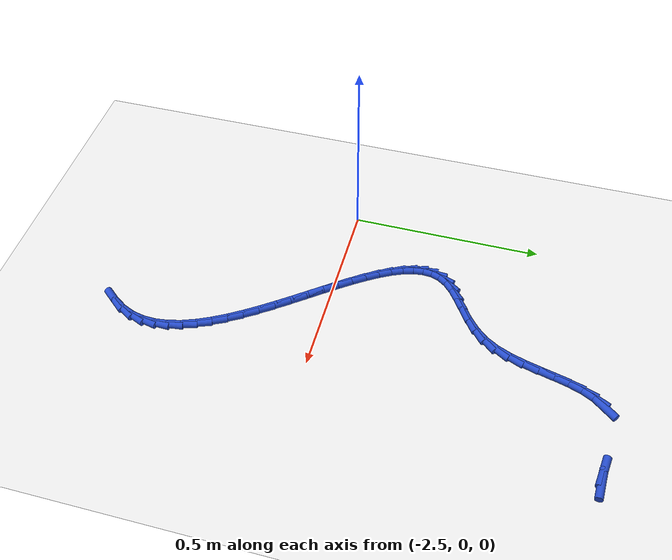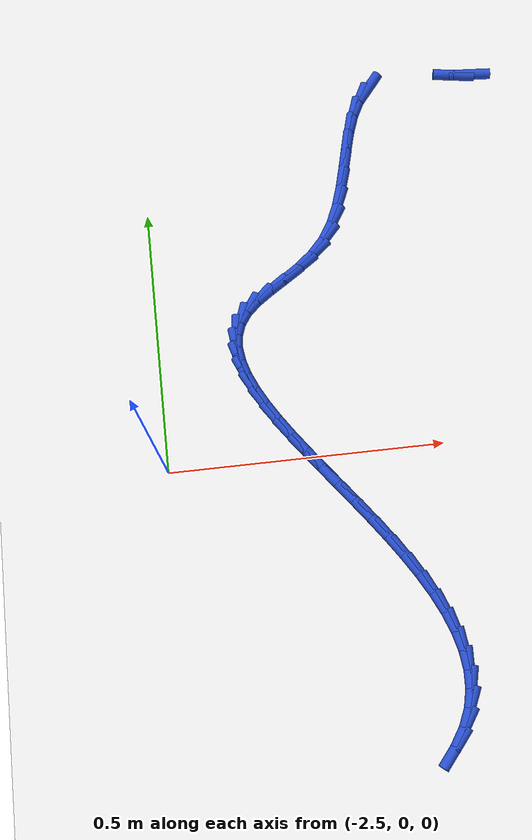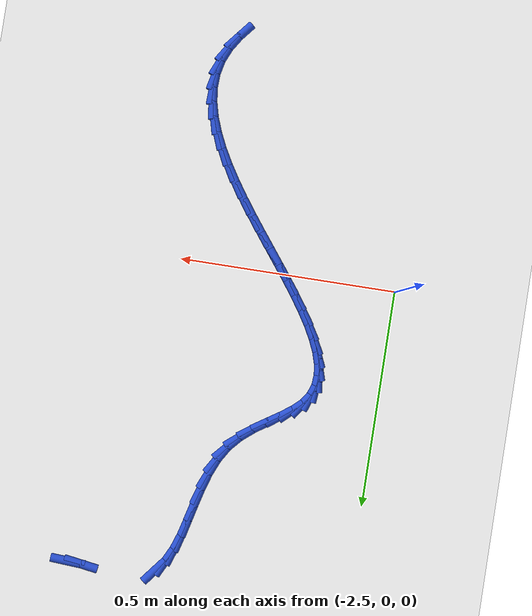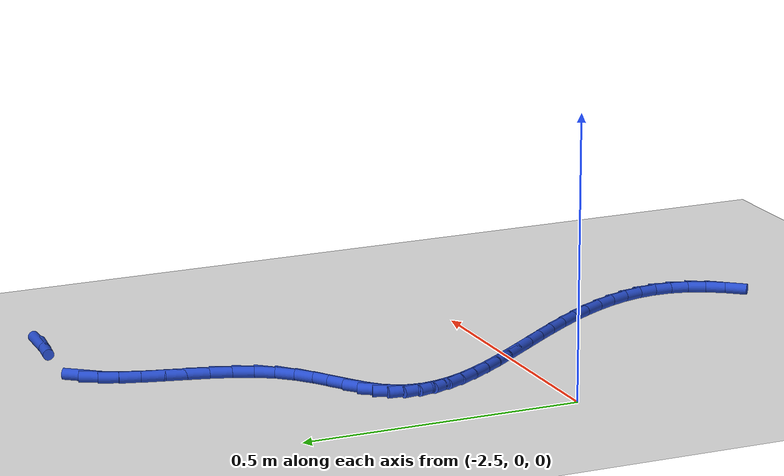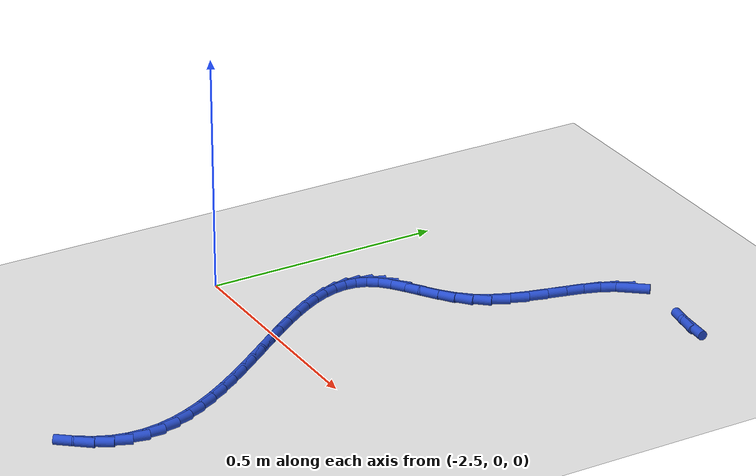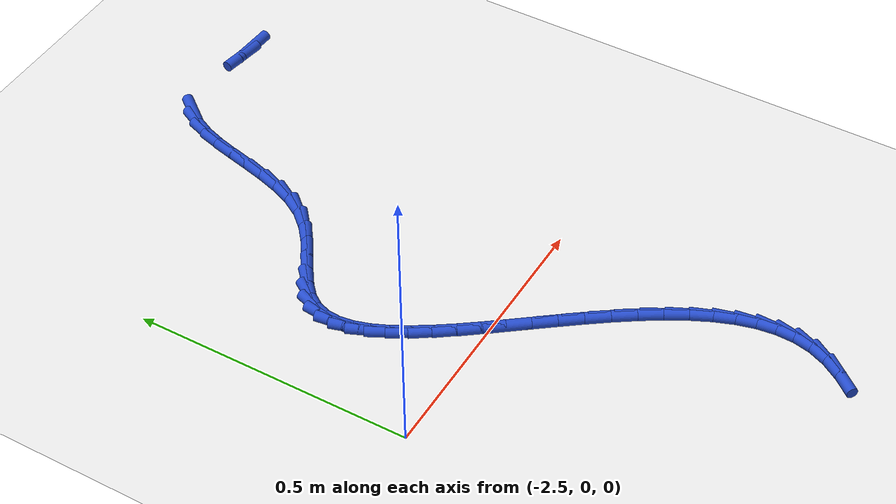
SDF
<sdf version="1.6">
 <world name="default">
  <model name="ground_plane">
   <static>1</static>
   <link name="link">
    <collision name="collision">
     <geometry><plane><normal>0 0 1</normal><size>100 100</size></plane></geometry>
     <surface><friction><ode><mu>100</mu><mu2>50</mu2></ode></friction></surface>
    </collision>
    <visual name="visual">
     <cast_shadows>0</cast_shadows>
     <geometry><plane><normal>0 0 1</normal><size>100 100</size></plane></geometry>
     <material>
      <script><uri>file://media/materials/scripts/gazebo.material</uri><name>Gazebo/WhiteGlow</name></script>
     </material>
    </visual>
   </link>
  </model>
  <model name="line">
   <link name="link_107">
    <pose>-1.851422405345341 0.727134787232987 0.01 0 1.57 -0.06237467459850615</pose>
    <collision name="collision">
     <geometry><cylinder><radius>0.01</radius><length>0.08</length></cylinder></geometry>
    </collision>
    <visual name="visual">
     <material>
      <script><name>Gazebo/Blue</name><uri>file://media/materials/scripts/gazebo.material</uri></script>
     </material>
     <geometry><cylinder><radius>0.01</radius><length>0.08</length></cylinder></geometry>
    </visual>
   </link>
   <link name="link_108">
    <pose>-1.8821171817120144 0.7290518507416011 0.01 0 1.57 -0.1492251677613597</pose>
    <collision name="collision">
     <geometry><cylinder><radius>0.01</radius><length>0.08</length></cylinder></geometry>
    </collision>
    <visual name="visual">
     <material>
      <script><name>Gazebo/Blue</name><uri>file://media/materials/scripts/gazebo.material</uri></script>
     </material>
     <geometry><cylinder><radius>0.01</radius><length>0.08</length></cylinder></geometry>
    </visual>
   </link>
   <link name="link_113">
    <pose>-2.054889419278315 0.7146491188451355 0.01 0 1.57 0.8979172937635405</pose>
    <collision name="collision">
     <geometry><cylinder><radius>0.01</radius><length>0.08</length></cylinder></geometry>
    </collision>
    <visual name="visual">
     <material>
      <script><name>Gazebo/Blue</name><uri>file://media/materials/scripts/gazebo.material</uri></script>
     </material>
     <geometry><cylinder><radius>0.01</radius><length>0.08</length></cylinder></geometry>
    </visual>
   </link>
   <link name="link_114">
    <pose>-2.0736763861262086 0.691075565786263 0.01 0 1.57 1.108438636176878</pose>
    <collision name="collision">
     <geometry><cylinder><radius>0.01</radius><length>0.08</length></cylinder></geometry>
    </collision>
    <visual name="visual">
     <material>
      <script><name>Gazebo/Blue</name><uri>file://media/materials/scripts/gazebo.material</uri></script>
     </material>
     <geometry><cylinder><radius>0.01</radius><length>0.08</length></cylinder></geometry>
    </visual>
   </link>
   <link name="link_115">
    <pose>-2.0881874542079037 0.661959597030697 0.01 0 1.57 1.2396733311084884</pose>
    <collision name="collision">
     <geometry><cylinder><radius>0.01</radius><length>0.08</length></cylinder></geometry>
    </collision>
    <visual name="visual">
     <material>
      <script><name>Gazebo/Blue</name><uri>file://media/materials/scripts/gazebo.material</uri></script>
     </material>
     <geometry><cylinder><radius>0.01</radius><length>0.08</length></cylinder></geometry>
    </visual>
   </link>
   <link name="link_116">
    <pose>-2.099655461289994 0.6286010428904676 0.01 0 1.57 1.3107743665459608</pose>
    <collision name="collision">
     <geometry><cylinder><radius>0.01</radius><length>0.08</length></cylinder></geometry>
    </collision>
    <visual name="visual">
     <material>
      <script><name>Gazebo/Blue</name><uri>file://media/materials/scripts/gazebo.material</uri></script>
     </material>
     <geometry><cylinder><radius>0.01</radius><length>0.08</length></cylinder></geometry>
    </visual>
   </link>
   <link name="link_117">
    <pose>-2.1093132451390697 0.5922997336776034 0.01 0 1.57 1.3359047723183768</pose>
    <collision name="collision">
     <geometry><cylinder><radius>0.01</radius><length>0.08</length></cylinder></geometry>
    </collision>
    <visual name="visual">
     <material>
      <script><name>Gazebo/Blue</name><uri>file://media/materials/scripts/gazebo.material</uri></script>
     </material>
     <geometry><cylinder><radius>0.01</radius><length>0.08</length></cylinder></geometry>
    </visual>
   </link>
   <link name="link_118">
    <pose>-2.1183936435217245 0.5543554997041328 0.01 0 1.57 1.3217898520260687</pose>
    <collision name="collision">
     <geometry><cylinder><radius>0.01</radius><length>0.08</length></cylinder></geometry>
    </collision>
    <visual name="visual">
     <material>
      <script><name>Gazebo/Blue</name><uri>file://media/materials/scripts/gazebo.material</uri></script>
     </material>
     <geometry><cylinder><radius>0.01</radius><length>0.08</length></cylinder></geometry>
    </visual>
   </link>
   <link name="link_119">
    <pose>-2.1281294942045488 0.5160681712820859 0.01 0 1.57 1.2689287001186136</pose>
    <collision name="collision">
     <geometry><cylinder><radius>0.01</radius><length>0.08</length></cylinder></geometry>
    </collision>
    <visual name="visual">
     <material>
      <script><name>Gazebo/Blue</name><uri>file://media/materials/scripts/gazebo.material</uri></script>
     </material>
     <geometry><cylinder><radius>0.01</radius><length>0.08</length></cylinder></geometry>
    </visual>
   </link>
   <link name="link_120">
    <pose>-2.139753634954136 0.47873757872349154 0.01 0 1.57 1.1728247801799896</pose>
    <collision name="collision">
     <geometry><cylinder><radius>0.01</radius><length>0.08</length></cylinder></geometry>
    </collision>
    <visual name="visual">
     <material>
      <script><name>Gazebo/Blue</name><uri>file://media/materials/scripts/gazebo.material</uri></script>
     </material>
     <geometry><cylinder><radius>0.01</radius><length>0.08</length></cylinder></geometry>
    </visual>
   </link>
   <link name="link_121">
    <pose>-2.1544989035370783 0.4436635523403786 0.01 0 1.57 1.0259871695971379</pose>
    <collision name="collision">
     <geometry><cylinder><radius>0.01</radius><length>0.08</length></cylinder></geometry>
    </collision>
    <visual name="visual">
     <material>
      <script><name>Gazebo/Blue</name><uri>file://media/materials/scripts/gazebo.material</uri></script>
     </material>
     <geometry><cylinder><radius>0.01</radius><length>0.08</length></cylinder></geometry>
    </visual>
   </link>
   <link name="link_122">
    <pose>-2.1735981377199662 0.4121459224447758 0.01 0 1.57 0.839370214415792</pose>
    <collision name="collision">
     <geometry><cylinder><radius>0.01</radius><length>0.08</length></cylinder></geometry>
    </collision>
    <visual name="visual">
     <material>
      <script><name>Gazebo/Blue</name><uri>file://media/materials/scripts/gazebo.material</uri></script>
     </material>
     <geometry><cylinder><radius>0.01</radius><length>0.08</length></cylinder></geometry>
    </visual>
   </link>
   <link name="link_123">
    <pose>-2.1978249573672444 0.38515192268157533 0.01 0 1.57 0.6925511351685522</pose>
    <collision name="collision">
     <geometry><cylinder><radius>0.01</radius><length>0.08</length></cylinder></geometry>
    </collision>
    <visual name="visual">
     <material>
      <script><name>Gazebo/Blue</name><uri>file://media/materials/scripts/gazebo.material</uri></script>
     </material>
     <geometry><cylinder><radius>0.01</radius><length>0.08</length></cylinder></geometry>
    </visual>
   </link>
   <link name="link_124">
    <pose>-2.22570567141621 0.3620211321097121 0.01 0 1.57 0.6075878278173372</pose>
    <collision name="collision">
     <geometry><cylinder><radius>0.01</radius><length>0.08</length></cylinder></geometry>
    </collision>
    <visual name="visual">
     <material>
      <script><name>Gazebo/Blue</name><uri>file://media/materials/scripts/gazebo.material</uri></script>
     </material>
     <geometry><cylinder><radius>0.01</radius><length>0.08</length></cylinder></geometry>
    </visual>
   </link>
   <link name="link_125">
    <pose>-2.255080207761514 0.34159600620887187 0.01 0 1.57 0.5816670946358619</pose>
    <collision name="collision">
     <geometry><cylinder><radius>0.01</radius><length>0.08</length></cylinder></geometry>
    </collision>
    <visual name="visual">
     <material>
      <script><name>Gazebo/Blue</name><uri>file://media/materials/scripts/gazebo.material</uri></script>
     </material>
     <geometry><cylinder><radius>0.01</radius><length>0.08</length></cylinder></geometry>
    </visual>
   </link>
   <link name="link_126">
    <pose>-2.2837883238356627 0.32271887699852553 0.01 0 1.57 0.6202507188776875</pose>
    <collision name="collision">
     <geometry><cylinder><radius>0.01</radius><length>0.08</length></cylinder></geometry>
    </collision>
    <visual name="visual">
     <material>
      <script><name>Gazebo/Blue</name><uri>file://media/materials/scripts/gazebo.material</uri></script>
     </material>
     <geometry><cylinder><radius>0.01</radius><length>0.08</length></cylinder></geometry>
    </visual>
   </link>
   <link name="link_127">
    <pose>-2.3096697770711594 0.3042320764981446 0.01 0 1.57 0.7445608548222381</pose>
    <collision name="collision">
     <geometry><cylinder><radius>0.01</radius><length>0.08</length></cylinder></geometry>
    </collision>
    <visual name="visual">
     <material>
      <script><name>Gazebo/Blue</name><uri>file://media/materials/scripts/gazebo.material</uri></script>
     </material>
     <geometry><cylinder><radius>0.01</radius><length>0.08</length></cylinder></geometry>
    </visual>
   </link>
   <link name="link_128">
    <pose>-2.330564372143896 0.2849779588314589 0.01 0 1.57 0.9726010026063336</pose>
    <collision name="collision">
     <geometry><cylinder><radius>0.01</radius><length>0.08</length></cylinder></geometry>
    </collision>
    <visual name="visual">
     <material>
      <script><name>Gazebo/Blue</name><uri>file://media/materials/scripts/gazebo.material</uri></script>
     </material>
     <geometry><cylinder><radius>0.01</radius><length>0.08</length></cylinder></geometry>
    </visual>
   </link>
   <link name="link_129">
    <pose>-2.344831914001391 0.2640421761122486 0.01 0 1.57 1.239364003235438</pose>
    <collision name="collision">
     <geometry><cylinder><radius>0.01</radius><length>0.08</length></cylinder></geometry>
    </collision>
    <visual name="visual">
     <material>
      <script><name>Gazebo/Blue</name><uri>file://media/materials/scripts/gazebo.material</uri></script>
     </material>
     <geometry><cylinder><radius>0.01</radius><length>0.08</length></cylinder></geometry>
    </visual>
   </link>
   <link name="link_130">
    <pose>-2.3526389189138346 0.24135570546158802 0.01 0 1.57 1.4926293784727964</pose>
    <collision name="collision">
     <geometry><cylinder><radius>0.01</radius><length>0.08</length></cylinder></geometry>
    </collision>
    <visual name="visual">
     <material>
      <script><name>Gazebo/Blue</name><uri>file://media/materials/scripts/gazebo.material</uri></script>
     </material>
     <geometry><cylinder><radius>0.01</radius><length>0.08</length></cylinder></geometry>
    </visual>
   </link>
   <link name="link_131">
    <pose>-2.354544032767968 0.21703299380384186 0.01 0 1.57 -1.4385414452161254</pose>
    <collision name="collision">
     <geometry><cylinder><radius>0.01</radius><length>0.08</length></cylinder></geometry>
    </collision>
    <visual name="visual">
     <material>
      <script><name>Gazebo/Blue</name><uri>file://media/materials/scripts/gazebo.material</uri></script>
     </material>
     <geometry><cylinder><radius>0.01</radius><length>0.08</length></cylinder></geometry>
    </visual>
   </link>
   <link name="link_132">
    <pose>-2.351105901450533 0.19118848806337452 0.01 0 1.57 -1.277752156782041</pose>
    <collision name="collision">
     <geometry><cylinder><radius>0.01</radius><length>0.08</length></cylinder></geometry>
    </collision>
    <visual name="visual">
     <material>
      <script><name>Gazebo/Blue</name><uri>file://media/materials/scripts/gazebo.material</uri></script>
     </material>
     <geometry><cylinder><radius>0.01</radius><length>0.08</length></cylinder></geometry>
    </visual>
   </link>
   <link name="link_133">
    <pose>-2.342883170848271 0.16393663516454993 0.01 0 1.57 -1.159552235589883</pose>
    <collision name="collision">
     <geometry><cylinder><radius>0.01</radius><length>0.08</length></cylinder></geometry>
    </collision>
    <visual name="visual">
     <material>
      <script><name>Gazebo/Blue</name><uri>file://media/materials/scripts/gazebo.material</uri></script>
     </material>
     <geometry><cylinder><radius>0.01</radius><length>0.08</length></cylinder></geometry>
    </visual>
   </link>
   <link name="link_134">
    <pose>-2.330434486847926 0.13539188203173416 0.01 0 1.57 -1.0739595230453005</pose>
    <collision name="collision">
     <geometry><cylinder><radius>0.01</radius><length>0.08</length></cylinder></geometry>
    </collision>
    <visual name="visual">
     <material>
      <script><name>Gazebo/Blue</name><uri>file://media/materials/scripts/gazebo.material</uri></script>
     </material>
     <geometry><cylinder><radius>0.01</radius><length>0.08</length></cylinder></geometry>
    </visual>
   </link>
   <link name="link_135">
    <pose>-2.314318495336239 0.10566867558929117 0.01 0 1.57 -1.0126024744734086</pose>
    <collision name="collision">
     <geometry><cylinder><radius>0.01</radius><length>0.08</length></cylinder></geometry>
    </collision>
    <visual name="visual">
     <material>
      <script><name>Gazebo/Blue</name><uri>file://media/materials/scripts/gazebo.material</uri></script>
     </material>
     <geometry><cylinder><radius>0.01</radius><length>0.08</length></cylinder></geometry>
    </visual>
   </link>
   <link name="link_136">
    <pose>-2.2950938421999525 0.07488146276158546 0.01 0 1.57 -0.9694587782624218</pose>
    <collision name="collision">
     <geometry><cylinder><radius>0.01</radius><length>0.08</length></cylinder></geometry>
    </collision>
    <visual name="visual">
     <material>
      <script><name>Gazebo/Blue</name><uri>file://media/materials/scripts/gazebo.material</uri></script>
     </material>
     <geometry><cylinder><radius>0.01</radius><length>0.08</length></cylinder></geometry>
    </visual>
   </link>
   <link name="link_137">
    <pose>-2.2733191733258082 0.04314469047298162 0.01 0 1.57 -0.9404476750778724</pose>
    <collision name="collision">
     <geometry><cylinder><radius>0.01</radius><length>0.08</length></cylinder></geometry>
    </collision>
    <visual name="visual">
     <material>
      <script><name>Gazebo/Blue</name><uri>file://media/materials/scripts/gazebo.material</uri></script>
     </material>
     <geometry><cylinder><radius>0.01</radius><length>0.08</length></cylinder></geometry>
    </visual>
   </link>
   <link name="link_138">
    <pose>-2.2495531346005477 0.010572805647844234 0.01 0 1.57 -0.9229008655252668</pose>
    <collision name="collision">
     <geometry><cylinder><radius>0.01</radius><length>0.08</length></cylinder></geometry>
    </collision>
    <visual name="visual">
     <material>
      <script><name>Gazebo/Blue</name><uri>file://media/materials/scripts/gazebo.material</uri></script>
     </material>
     <geometry><cylinder><radius>0.01</radius><length>0.08</length></cylinder></geometry>
    </visual>
   </link>
   <link name="link_139">
    <pose>-2.2243543719109145 -0.02271974478946204 0.01 0 1.57 -0.9151588136922933</pose>
    <collision name="collision">
     <geometry><cylinder><radius>0.01</radius><length>0.08</length></cylinder></geometry>
    </collision>
    <visual name="visual">
     <material>
      <script><name>Gazebo/Blue</name><uri>file://media/materials/scripts/gazebo.material</uri></script>
     </material>
     <geometry><cylinder><radius>0.01</radius><length>0.08</length></cylinder></geometry>
    </visual>
   </link>
   <link name="link_140">
    <pose>-2.1982815311436488 -0.05661851391457367 0.01 0 1.57 -0.9163073230094643</pose>
    <collision name="collision">
     <geometry><cylinder><radius>0.01</radius><length>0.08</length></cylinder></geometry>
    </collision>
    <visual name="visual">
     <material>
      <script><name>Gazebo/Blue</name><uri>file://media/materials/scripts/gazebo.material</uri></script>
     </material>
     <geometry><cylinder><radius>0.01</radius><length>0.08</length></cylinder></geometry>
    </visual>
   </link>
   <link name="link_141">
    <pose>-2.1718932581854946 -0.09100905480312402 0.01 0 1.57 -0.9260233500886286</pose>
    <collision name="collision">
     <geometry><cylinder><radius>0.01</radius><length>0.08</length></cylinder></geometry>
    </collision>
    <visual name="visual">
     <material>
      <script><name>Gazebo/Blue</name><uri>file://media/materials/scripts/gazebo.material</uri></script>
     </material>
     <geometry><cylinder><radius>0.01</radius><length>0.08</length></cylinder></geometry>
    </visual>
   </link>
   <link name="link_142">
    <pose>-2.1457481989231924 -0.12577692053074951 0.01 0 1.57 -0.944500958874174</pose>
    <collision name="collision">
     <geometry><cylinder><radius>0.01</radius><length>0.08</length></cylinder></geometry>
    </collision>
    <visual name="visual">
     <material>
      <script><name>Gazebo/Blue</name><uri>file://media/materials/scripts/gazebo.material</uri></script>
     </material>
     <geometry><cylinder><radius>0.01</radius><length>0.08</length></cylinder></geometry>
    </visual>
   </link>
   <link name="link_143">
    <pose>-2.120404999243486 -0.16080766417308567 0.01 0 1.57 -0.9724377208102287</pose>
    <collision name="collision">
     <geometry><cylinder><radius>0.01</radius><length>0.08</length></cylinder></geometry>
    </collision>
    <visual name="visual">
     <material>
      <script><name>Gazebo/Blue</name><uri>file://media/materials/scripts/gazebo.material</uri></script>
     </material>
     <geometry><cylinder><radius>0.01</radius><length>0.08</length></cylinder></geometry>
    </visual>
   </link>
   <link name="link_144">
    <pose>-2.0964223050331157 -0.19598683880576773 0.01 0 1.57 -1.0110681257195233</pose>
    <collision name="collision">
     <geometry><cylinder><radius>0.01</radius><length>0.08</length></cylinder></geometry>
    </collision>
    <visual name="visual">
     <material>
      <script><name>Gazebo/Blue</name><uri>file://media/materials/scripts/gazebo.material</uri></script>
     </material>
     <geometry><cylinder><radius>0.01</radius><length>0.08</length></cylinder></geometry>
    </visual>
   </link>
   <link name="link_145">
    <pose>-2.074358762178824 -0.2311999975044311 0.01 0 1.57 -1.0622291020507324</pose>
    <collision name="collision">
     <geometry><cylinder><radius>0.01</radius><length>0.08</length></cylinder></geometry>
    </collision>
    <visual name="visual">
     <material>
      <script><name>Gazebo/Blue</name><uri>file://media/materials/scripts/gazebo.material</uri></script>
     </material>
     <geometry><cylinder><radius>0.01</radius><length>0.08</length></cylinder></geometry>
    </visual>
   </link>
   <link name="link_146">
    <pose>-2.054773016567354 -0.2663326933447113 0.01 0 1.57 -1.1284261977139693</pose>
    <collision name="collision">
     <geometry><cylinder><radius>0.01</radius><length>0.08</length></cylinder></geometry>
    </collision>
    <visual name="visual">
     <material>
      <script><name>Gazebo/Blue</name><uri>file://media/materials/scripts/gazebo.material</uri></script>
     </material>
     <geometry><cylinder><radius>0.01</radius><length>0.08</length></cylinder></geometry>
    </visual>
   </link>
   <link name="link_147">
    <pose>-2.0382237140854467 -0.3012704794022437 0.01 0 1.57 -1.212822073673852</pose>
    <collision name="collision">
     <geometry><cylinder><radius>0.01</radius><length>0.08</length></cylinder></geometry>
    </collision>
    <visual name="visual">
     <material>
      <script><name>Gazebo/Blue</name><uri>file://media/materials/scripts/gazebo.material</uri></script>
     </material>
     <geometry><cylinder><radius>0.01</radius><length>0.08</length></cylinder></geometry>
    </visual>
   </link>
   <link name="link_148">
    <pose>-2.025269500619845 -0.3358989087526637 0.01 0 1.57 -1.3189691544301496</pose>
    <collision name="collision">
     <geometry><cylinder><radius>0.01</radius><length>0.08</length></cylinder></geometry>
    </collision>
    <visual name="visual">
     <material>
      <script><name>Gazebo/Blue</name><uri>file://media/materials/scripts/gazebo.material</uri></script>
     </material>
     <geometry><cylinder><radius>0.01</radius><length>0.08</length></cylinder></geometry>
    </visual>
   </link>
   <link name="link_149">
    <pose>-2.01646902205729 -0.3701035344716077 0.01 0 1.57 -1.44995823732058</pose>
    <collision name="collision">
     <geometry><cylinder><radius>0.01</radius><length>0.08</length></cylinder></geometry>
    </collision>
    <visual name="visual">
     <material>
      <script><name>Gazebo/Blue</name><uri>file://media/materials/scripts/gazebo.material</uri></script>
     </material>
     <geometry><cylinder><radius>0.01</radius><length>0.08</length></cylinder></geometry>
    </visual>
   </link>
   <link name="link_150">
    <pose>-2.0123809242845248 -0.40376990963470916 0.01 0 1.57 1.5349801704544217</pose>
    <collision name="collision">
     <geometry><cylinder><radius>0.01</radius><length>0.08</length></cylinder></geometry>
    </collision>
    <visual name="visual">
     <material>
      <script><name>Gazebo/Blue</name><uri>file://media/materials/scripts/gazebo.material</uri></script>
     </material>
     <geometry><cylinder><radius>0.01</radius><length>0.08</length></cylinder></geometry>
    </visual>
   </link>
   <link name="link_151">
    <pose>-2.0135638531882902 -0.43678358731760425 0.01 0 1.57 1.35666204351262</pose>
    <collision name="collision">
     <geometry><cylinder><radius>0.01</radius><length>0.08</length></cylinder></geometry>
    </collision>
    <visual name="visual">
     <material>
      <script><name>Gazebo/Blue</name><uri>file://media/materials/scripts/gazebo.material</uri></script>
     </material>
     <geometry><cylinder><radius>0.01</radius><length>0.08</length></cylinder></geometry>
    </visual>
   </link>
   <link name="link_152">
    <pose>-2.02057645465533 -0.4690301205959288 0.01 0 1.57 1.1676587903704558</pose>
    <collision name="collision">
     <geometry><cylinder><radius>0.01</radius><length>0.08</length></cylinder></geometry>
    </collision>
    <visual name="visual">
     <material>
      <script><name>Gazebo/Blue</name><uri>file://media/materials/scripts/gazebo.material</uri></script>
     </material>
     <geometry><cylinder><radius>0.01</radius><length>0.08</length></cylinder></geometry>
    </visual>
   </link>
   <link name="link_153">
    <pose>-2.0339541411971385 -0.5003965812421842 0.01 0 1.57 1.0023240971429919</pose>
    <collision name="collision">
     <geometry><cylinder><radius>0.01</radius><length>0.08</length></cylinder></geometry>
    </collision>
    <visual name="visual">
     <material>
      <script><name>Gazebo/Blue</name><uri>file://media/materials/scripts/gazebo.material</uri></script>
     </material>
     <geometry><cylinder><radius>0.01</radius><length>0.08</length></cylinder></geometry>
    </visual>
   </link>
   <link name="link_154">
    <pose>-2.053392248987763 -0.5308249543287187 0.01 0 1.57 0.885060351936621</pose>
    <collision name="collision">
     <geometry><cylinder><radius>0.01</radius><length>0.08</length></cylinder></geometry>
    </collision>
    <visual name="visual">
     <material>
      <script><name>Gazebo/Blue</name><uri>file://media/materials/scripts/gazebo.material</uri></script>
     </material>
     <geometry><cylinder><radius>0.01</radius><length>0.08</length></cylinder></geometry>
    </visual>
   </link>
  </model>
 </world>
</sdf>
